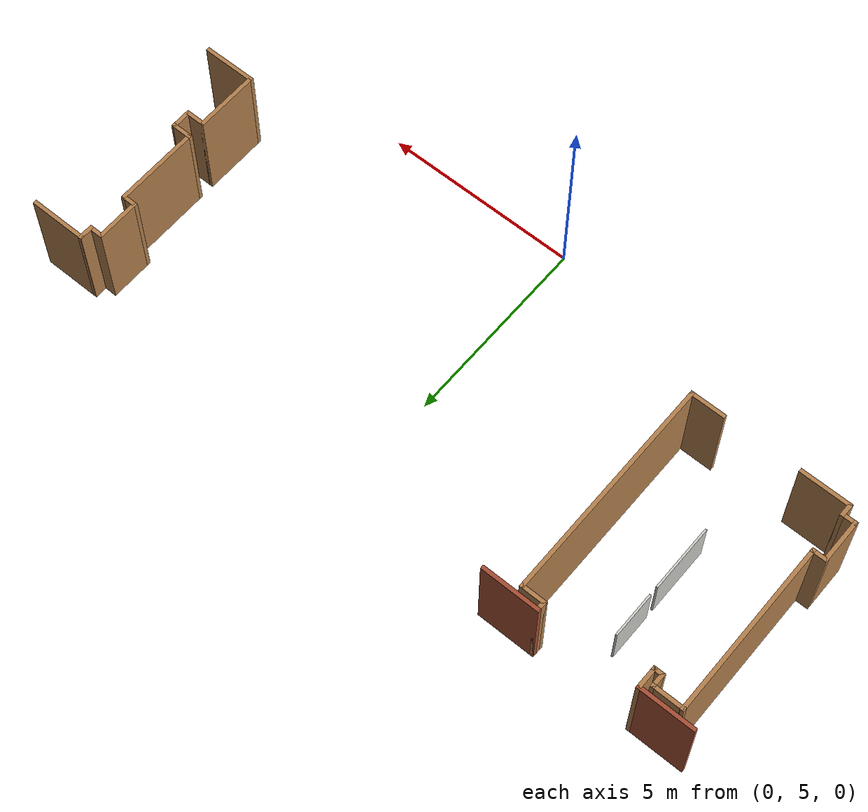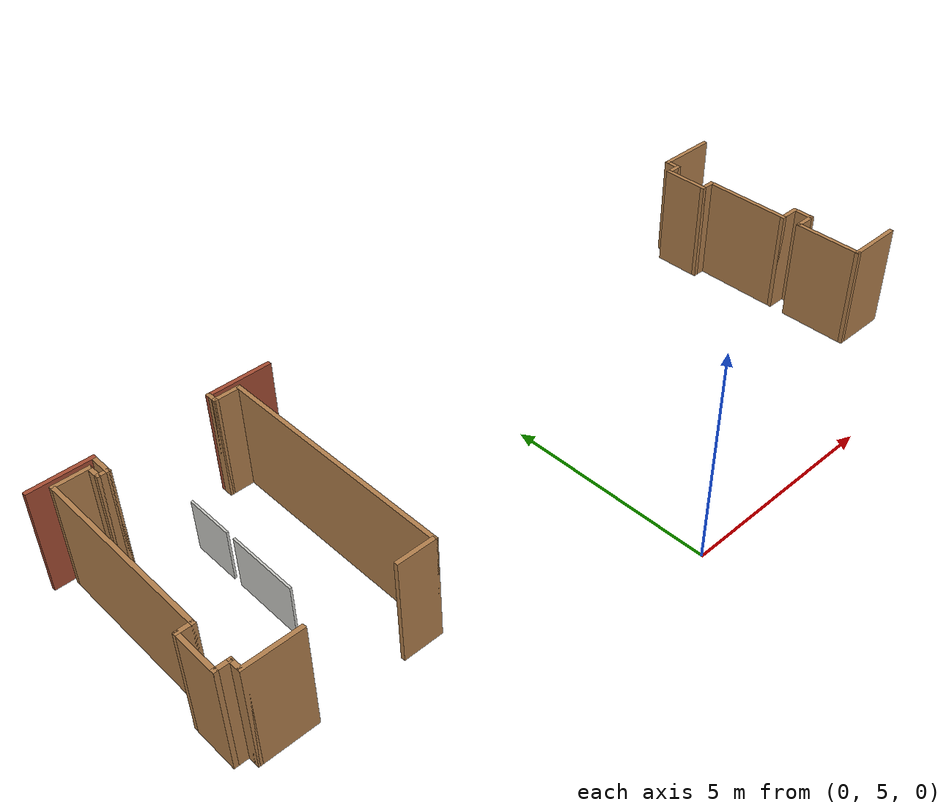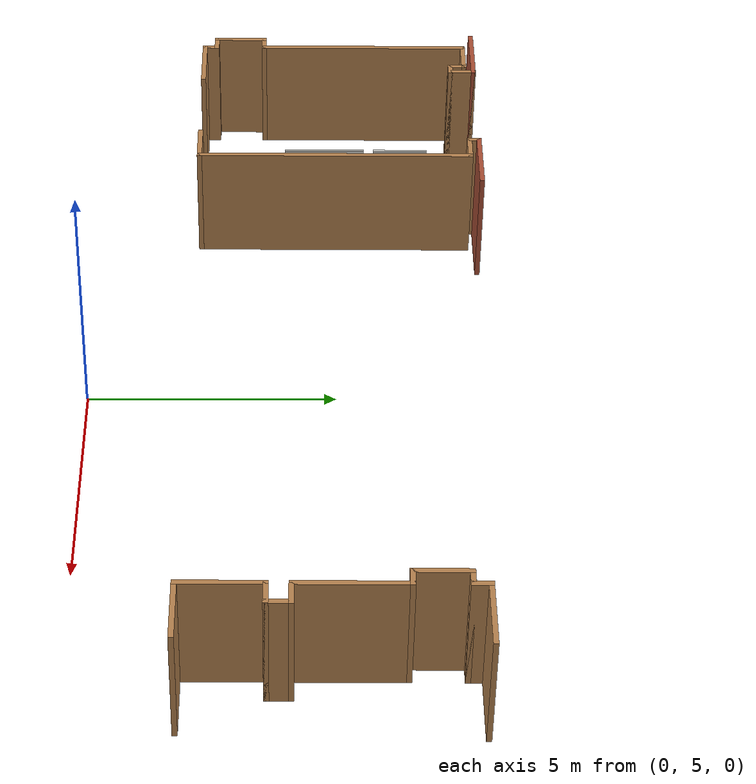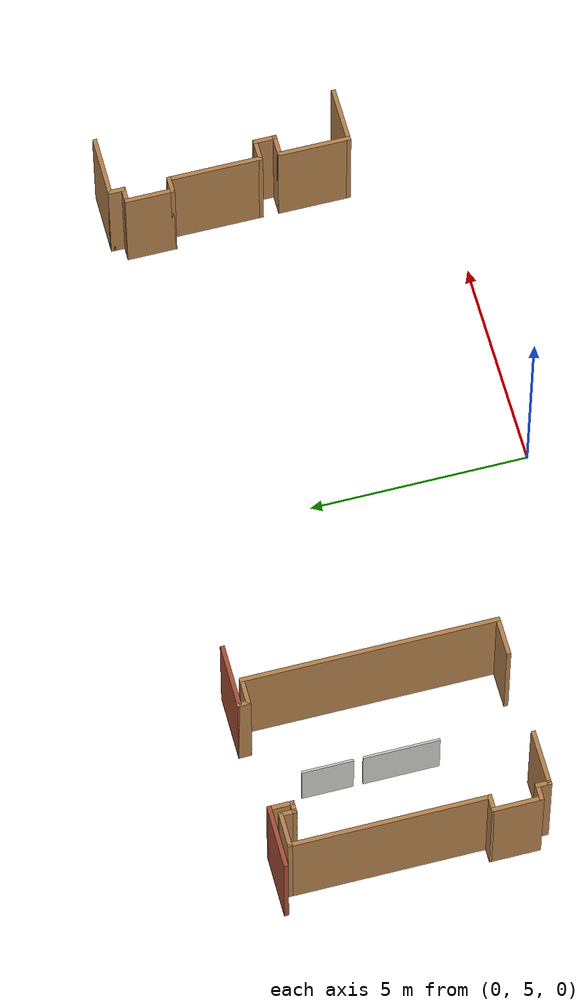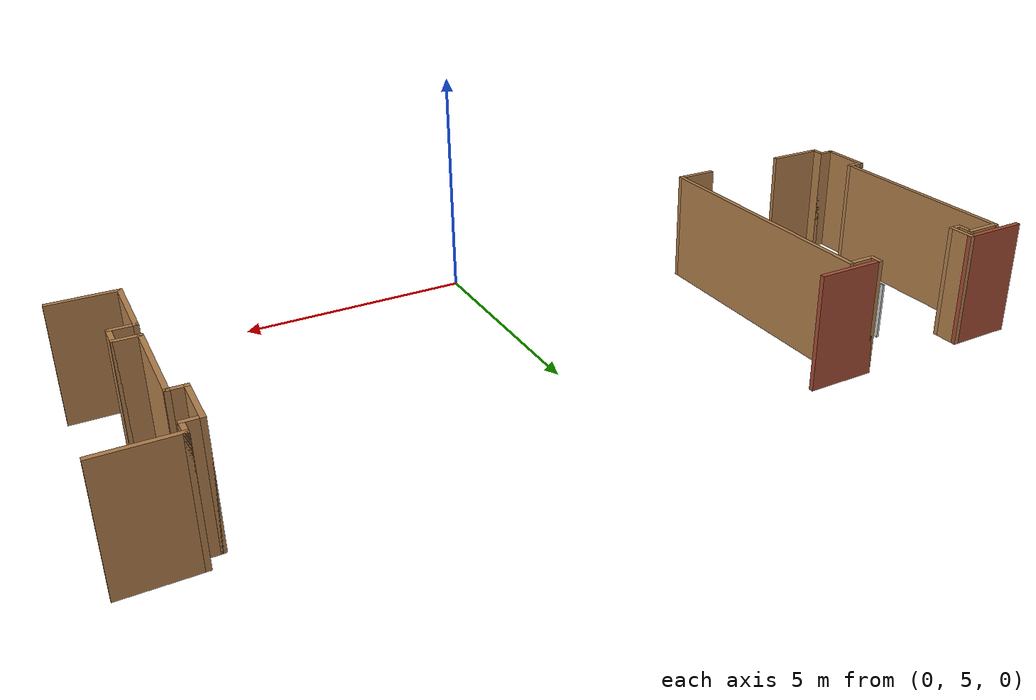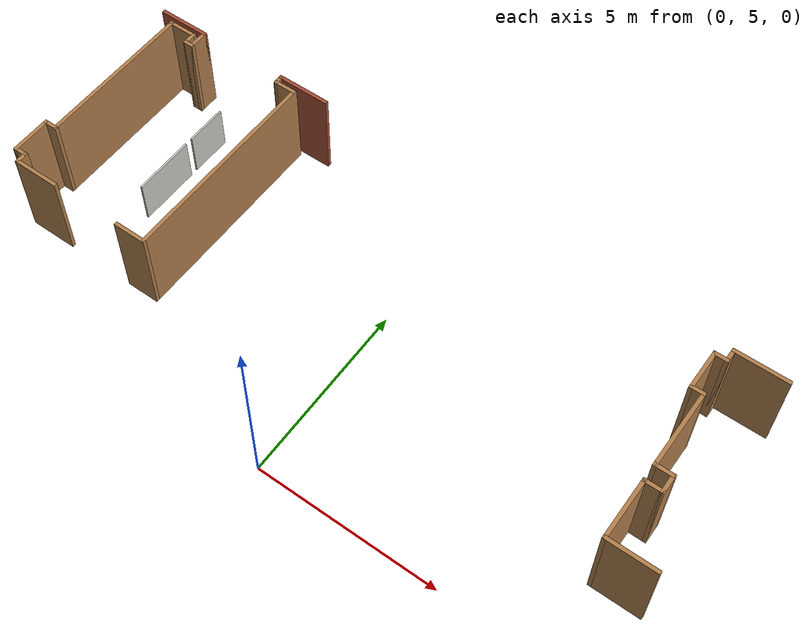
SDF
<sdf version="1.7">
 <model name="miraikan_3F_gate_and_elevator">
  <link name="Wall_100">
   <pose>5.2575 7.4925 0 0 -0 1.5708</pose>
   <visual name="Wall_100_Visual">
    <pose>0 0 1.25 0 -0 0</pose>
    <geometry><box><size>1.695 0.1 2.5</size></box></geometry>
    <material>
     <script><uri>file://media/materials/scripts/gazebo.material</uri><name>Gazebo/Wood</name></script>
     <ambient>1 1 1 1</ambient>
     <shader type="pixel"/>
    </material>
    <meta><layer>0</layer></meta>
   </visual>
   <collision name="Wall_100_Collision">
    <pose>0 0 1.25 0 -0 0</pose>
    <geometry><box><size>1.695 0.1 2.5</size></box></geometry>
    <surface>
     <friction>
      <ode><mu>1</mu><mu2>1</mu2><fdir1>0 0 0</fdir1><slip1>0</slip1><slip2>0</slip2></ode>
      <torsional>
       <coefficient>1</coefficient>
       <patch_radius>0</patch_radius>
       <surface_radius>0</surface_radius>
       <use_patch_radius>1</use_patch_radius>
       <ode><slip>0</slip></ode>
      </torsional>
     </friction>
     <bounce><restitution_coefficient>0</restitution_coefficient><threshold>1e+06</threshold></bounce>
     <contact>
      <collide_without_contact>0</collide_without_contact>
      <collide_without_contact_bitmask>1</collide_without_contact_bitmask>
      <collide_bitmask>1</collide_bitmask>
      <ode>
       <soft_cfm>0</soft_cfm>
       <soft_erp>0.2</soft_erp>
       <kp>1e+13</kp>
       <kd>1</kd>
       <max_vel>0.01</max_vel>
       <min_depth>0</min_depth>
      </ode>
      <bullet>
       <split_impulse>1</split_impulse>
       <split_impulse_penetration_threshold>-0.01</split_impulse_penetration_threshold>
       <soft_cfm>0</soft_cfm>
       <soft_erp>0.2</soft_erp>
       <kp>1e+13</kp>
       <kd>1</kd>
      </bullet>
     </contact>
    </surface>
   </collision>
  </link>
  <link name="Wall_102">
   <pose>5.4825 8.29 0 0 -0 0</pose>
   <visual name="Wall_102_Visual">
    <pose>0 0 1.25 0 -0 0</pose>
    <geometry><box><size>0.55 0.1 2.5</size></box></geometry>
    <material>
     <script><uri>file://media/materials/scripts/gazebo.material</uri><name>Gazebo/Wood</name></script>
     <ambient>1 1 1 1</ambient>
     <shader type="pixel"/>
    </material>
    <meta><layer>0</layer></meta>
   </visual>
   <collision name="Wall_102_Collision">
    <pose>0 0 1.25 0 -0 0</pose>
    <geometry><box><size>0.55 0.1 2.5</size></box></geometry>
    <surface>
     <friction>
      <ode><mu>1</mu><mu2>1</mu2><fdir1>0 0 0</fdir1><slip1>0</slip1><slip2>0</slip2></ode>
      <torsional>
       <coefficient>1</coefficient>
       <patch_radius>0</patch_radius>
       <surface_radius>0</surface_radius>
       <use_patch_radius>1</use_patch_radius>
       <ode><slip>0</slip></ode>
      </torsional>
     </friction>
     <bounce><restitution_coefficient>0</restitution_coefficient><threshold>1e+06</threshold></bounce>
     <contact>
      <collide_without_contact>0</collide_without_contact>
      <collide_without_contact_bitmask>1</collide_without_contact_bitmask>
      <collide_bitmask>1</collide_bitmask>
      <ode>
       <soft_cfm>0</soft_cfm>
       <soft_erp>0.2</soft_erp>
       <kp>1e+13</kp>
       <kd>1</kd>
       <max_vel>0.01</max_vel>
       <min_depth>0</min_depth>
      </ode>
      <bullet>
       <split_impulse>1</split_impulse>
       <split_impulse_penetration_threshold>-0.01</split_impulse_penetration_threshold>
       <soft_cfm>0</soft_cfm>
       <soft_erp>0.2</soft_erp>
       <kp>1e+13</kp>
       <kd>1</kd>
      </bullet>
     </contact>
    </surface>
   </collision>
  </link>
  <link name="Wall_104">
   <pose>5.7075 8.515 0 0 -0 1.5708</pose>
   <visual name="Wall_104_Visual">
    <pose>0 0 1.25 0 -0 0</pose>
    <geometry><box><size>0.55 0.1 2.5</size></box></geometry>
    <material>
     <script><uri>file://media/materials/scripts/gazebo.material</uri><name>Gazebo/Wood</name></script>
     <ambient>1 1 1 1</ambient>
     <shader type="pixel"/>
    </material>
    <meta><layer>0</layer></meta>
   </visual>
   <collision name="Wall_104_Collision">
    <pose>0 0 1.25 0 -0 0</pose>
    <geometry><box><size>0.55 0.1 2.5</size></box></geometry>
    <surface>
     <friction>
      <ode><mu>1</mu><mu2>1</mu2><fdir1>0 0 0</fdir1><slip1>0</slip1><slip2>0</slip2></ode>
      <torsional>
       <coefficient>1</coefficient>
       <patch_radius>0</patch_radius>
       <surface_radius>0</surface_radius>
       <use_patch_radius>1</use_patch_radius>
       <ode><slip>0</slip></ode>
      </torsional>
     </friction>
     <bounce><restitution_coefficient>0</restitution_coefficient><threshold>1e+06</threshold></bounce>
     <contact>
      <collide_without_contact>0</collide_without_contact>
      <collide_without_contact_bitmask>1</collide_without_contact_bitmask>
      <collide_bitmask>1</collide_bitmask>
      <ode>
       <soft_cfm>0</soft_cfm>
       <soft_erp>0.2</soft_erp>
       <kp>1e+13</kp>
       <kd>1</kd>
       <max_vel>0.01</max_vel>
       <min_depth>0</min_depth>
      </ode>
      <bullet>
       <split_impulse>1</split_impulse>
       <split_impulse_penetration_threshold>-0.01</split_impulse_penetration_threshold>
       <soft_cfm>0</soft_cfm>
       <soft_erp>0.2</soft_erp>
       <kp>1e+13</kp>
       <kd>1</kd>
      </bullet>
     </contact>
    </surface>
   </collision>
  </link>
  <link name="Wall_106">
   <pose>5.4825 8.74 0 0 -0 3.14159</pose>
   <visual name="Wall_106_Visual">
    <pose>0 0 1.25 0 -0 0</pose>
    <geometry><box><size>0.55 0.1 2.5</size></box></geometry>
    <material>
     <script><uri>file://media/materials/scripts/gazebo.material</uri><name>Gazebo/Wood</name></script>
     <ambient>1 1 1 1</ambient>
     <shader type="pixel"/>
    </material>
    <meta><layer>0</layer></meta>
   </visual>
   <collision name="Wall_106_Collision">
    <pose>0 0 1.25 0 -0 0</pose>
    <geometry><box><size>0.55 0.1 2.5</size></box></geometry>
    <surface>
     <friction>
      <ode><mu>1</mu><mu2>1</mu2><fdir1>0 0 0</fdir1><slip1>0</slip1><slip2>0</slip2></ode>
      <torsional>
       <coefficient>1</coefficient>
       <patch_radius>0</patch_radius>
       <surface_radius>0</surface_radius>
       <use_patch_radius>1</use_patch_radius>
       <ode><slip>0</slip></ode>
      </torsional>
     </friction>
     <bounce><restitution_coefficient>0</restitution_coefficient><threshold>1e+06</threshold></bounce>
     <contact>
      <collide_without_contact>0</collide_without_contact>
      <collide_without_contact_bitmask>1</collide_without_contact_bitmask>
      <collide_bitmask>1</collide_bitmask>
      <ode>
       <soft_cfm>0</soft_cfm>
       <soft_erp>0.2</soft_erp>
       <kp>1e+13</kp>
       <kd>1</kd>
       <max_vel>0.01</max_vel>
       <min_depth>0</min_depth>
      </ode>
      <bullet>
       <split_impulse>1</split_impulse>
       <split_impulse_penetration_threshold>-0.01</split_impulse_penetration_threshold>
       <soft_cfm>0</soft_cfm>
       <soft_erp>0.2</soft_erp>
       <kp>1e+13</kp>
       <kd>1</kd>
      </bullet>
     </contact>
    </surface>
   </collision>
  </link>
  <link name="Wall_108">
   <pose>5.2575 9.795 0 0 -0 1.5708</pose>
   <visual name="Wall_108_Visual">
    <pose>0 0 1.25 0 -0 0</pose>
    <geometry><box><size>2.21 0.1 2.5</size></box></geometry>
    <material>
     <script><uri>file://media/materials/scripts/gazebo.material</uri><name>Gazebo/Wood</name></script>
     <ambient>1 1 1 1</ambient>
     <shader type="pixel"/>
    </material>
    <meta><layer>0</layer></meta>
   </visual>
   <collision name="Wall_108_Collision">
    <pose>0 0 1.25 0 -0 0</pose>
    <geometry><box><size>2.21 0.1 2.5</size></box></geometry>
    <surface>
     <friction>
      <ode><mu>1</mu><mu2>1</mu2><fdir1>0 0 0</fdir1><slip1>0</slip1><slip2>0</slip2></ode>
      <torsional>
       <coefficient>1</coefficient>
       <patch_radius>0</patch_radius>
       <surface_radius>0</surface_radius>
       <use_patch_radius>1</use_patch_radius>
       <ode><slip>0</slip></ode>
      </torsional>
     </friction>
     <bounce><restitution_coefficient>0</restitution_coefficient><threshold>1e+06</threshold></bounce>
     <contact>
      <collide_without_contact>0</collide_without_contact>
      <collide_without_contact_bitmask>1</collide_without_contact_bitmask>
      <collide_bitmask>1</collide_bitmask>
      <ode>
       <soft_cfm>0</soft_cfm>
       <soft_erp>0.2</soft_erp>
       <kp>1e+13</kp>
       <kd>1</kd>
       <max_vel>0.01</max_vel>
       <min_depth>0</min_depth>
      </ode>
      <bullet>
       <split_impulse>1</split_impulse>
       <split_impulse_penetration_threshold>-0.01</split_impulse_penetration_threshold>
       <soft_cfm>0</soft_cfm>
       <soft_erp>0.2</soft_erp>
       <kp>1e+13</kp>
       <kd>1</kd>
      </bullet>
     </contact>
    </surface>
   </collision>
  </link>
  <link name="Wall_110">
   <pose>5.1025 10.85 0 0 -0 3.14159</pose>
   <visual name="Wall_110_Visual">
    <pose>0 0 1.25 0 -0 0</pose>
    <geometry><box><size>0.41 0.1 2.5</size></box></geometry>
    <material>
     <script><uri>file://media/materials/scripts/gazebo.material</uri><name>Gazebo/Wood</name></script>
     <ambient>1 1 1 1</ambient>
     <shader type="pixel"/>
    </material>
    <meta><layer>0</layer></meta>
   </visual>
   <collision name="Wall_110_Collision">
    <pose>0 0 1.25 0 -0 0</pose>
    <geometry><box><size>0.41 0.1 2.5</size></box></geometry>
    <surface>
     <friction>
      <ode><mu>1</mu><mu2>1</mu2><fdir1>0 0 0</fdir1><slip1>0</slip1><slip2>0</slip2></ode>
      <torsional>
       <coefficient>1</coefficient>
       <patch_radius>0</patch_radius>
       <surface_radius>0</surface_radius>
       <use_patch_radius>1</use_patch_radius>
       <ode><slip>0</slip></ode>
      </torsional>
     </friction>
     <bounce><restitution_coefficient>0</restitution_coefficient><threshold>1e+06</threshold></bounce>
     <contact>
      <collide_without_contact>0</collide_without_contact>
      <collide_without_contact_bitmask>1</collide_without_contact_bitmask>
      <collide_bitmask>1</collide_bitmask>
      <ode>
       <soft_cfm>0</soft_cfm>
       <soft_erp>0.2</soft_erp>
       <kp>1e+13</kp>
       <kd>1</kd>
       <max_vel>0.01</max_vel>
       <min_depth>0</min_depth>
      </ode>
      <bullet>
       <split_impulse>1</split_impulse>
       <split_impulse_penetration_threshold>-0.01</split_impulse_penetration_threshold>
       <soft_cfm>0</soft_cfm>
       <soft_erp>0.2</soft_erp>
       <kp>1e+13</kp>
       <kd>1</kd>
      </bullet>
     </contact>
    </surface>
   </collision>
  </link>
  <link name="Wall_112">
   <pose>4.9475 11.375 0 0 -0 1.5708</pose>
   <visual name="Wall_112_Visual">
    <pose>0 0 1.25 0 -0 0</pose>
    <geometry><box><size>1.15 0.1 2.5</size></box></geometry>
    <material>
     <script><uri>file://media/materials/scripts/gazebo.material</uri><name>Gazebo/Wood</name></script>
     <ambient>1 1 1 1</ambient>
     <shader type="pixel"/>
    </material>
    <meta><layer>0</layer></meta>
   </visual>
   <collision name="Wall_112_Collision">
    <pose>0 0 1.25 0 -0 0</pose>
    <geometry><box><size>1.15 0.1 2.5</size></box></geometry>
    <surface>
     <friction>
      <ode><mu>1</mu><mu2>1</mu2><fdir1>0 0 0</fdir1><slip1>0</slip1><slip2>0</slip2></ode>
      <torsional>
       <coefficient>1</coefficient>
       <patch_radius>0</patch_radius>
       <surface_radius>0</surface_radius>
       <use_patch_radius>1</use_patch_radius>
       <ode><slip>0</slip></ode>
      </torsional>
     </friction>
     <bounce><restitution_coefficient>0</restitution_coefficient><threshold>1e+06</threshold></bounce>
     <contact>
      <collide_without_contact>0</collide_without_contact>
      <collide_without_contact_bitmask>1</collide_without_contact_bitmask>
      <collide_bitmask>1</collide_bitmask>
      <ode>
       <soft_cfm>0</soft_cfm>
       <soft_erp>0.2</soft_erp>
       <kp>1e+13</kp>
       <kd>1</kd>
       <max_vel>0.01</max_vel>
       <min_depth>0</min_depth>
      </ode>
      <bullet>
       <split_impulse>1</split_impulse>
       <split_impulse_penetration_threshold>-0.01</split_impulse_penetration_threshold>
       <soft_cfm>0</soft_cfm>
       <soft_erp>0.2</soft_erp>
       <kp>1e+13</kp>
       <kd>1</kd>
      </bullet>
     </contact>
    </surface>
   </collision>
  </link>
  <link name="Wall_114">
   <pose>5.1025 11.9 0 0 -0 0</pose>
   <visual name="Wall_114_Visual">
    <pose>0 0 1.25 0 -0 0</pose>
    <geometry><box><size>0.41 0.1 2.5</size></box></geometry>
    <material>
     <script><uri>file://media/materials/scripts/gazebo.material</uri><name>Gazebo/Wood</name></script>
     <ambient>1 1 1 1</ambient>
     <shader type="pixel"/>
    </material>
    <meta><layer>0</layer></meta>
   </visual>
   <collision name="Wall_114_Collision">
    <pose>0 0 1.25 0 -0 0</pose>
    <geometry><box><size>0.41 0.1 2.5</size></box></geometry>
    <surface>
     <friction>
      <ode><mu>1</mu><mu2>1</mu2><fdir1>0 0 0</fdir1><slip1>0</slip1><slip2>0</slip2></ode>
      <torsional>
       <coefficient>1</coefficient>
       <patch_radius>0</patch_radius>
       <surface_radius>0</surface_radius>
       <use_patch_radius>1</use_patch_radius>
       <ode><slip>0</slip></ode>
      </torsional>
     </friction>
     <bounce><restitution_coefficient>0</restitution_coefficient><threshold>1e+06</threshold></bounce>
     <contact>
      <collide_without_contact>0</collide_without_contact>
      <collide_without_contact_bitmask>1</collide_without_contact_bitmask>
      <collide_bitmask>1</collide_bitmask>
      <ode>
       <soft_cfm>0</soft_cfm>
       <soft_erp>0.2</soft_erp>
       <kp>1e+13</kp>
       <kd>1</kd>
       <max_vel>0.01</max_vel>
       <min_depth>0</min_depth>
      </ode>
      <bullet>
       <split_impulse>1</split_impulse>
       <split_impulse_penetration_threshold>-0.01</split_impulse_penetration_threshold>
       <soft_cfm>0</soft_cfm>
       <soft_erp>0.2</soft_erp>
       <kp>1e+13</kp>
       <kd>1</kd>
      </bullet>
     </contact>
    </surface>
   </collision>
  </link>
  <link name="Wall_145">
   <pose>5.2575 12.055 0 0 -0 1.5708</pose>
   <visual name="Wall_145_Visual">
    <pose>0 0 1.25 0 -0 0</pose>
    <geometry><box><size>0.41 0.1 2.5</size></box></geometry>
    <material>
     <script><uri>file://media/materials/scripts/gazebo.material</uri><name>Gazebo/Wood</name></script>
     <ambient>1 1 1 1</ambient>
     <shader type="pixel"/>
    </material>
    <meta><layer>0</layer></meta>
   </visual>
   <collision name="Wall_145_Collision">
    <pose>0 0 1.25 0 -0 0</pose>
    <geometry><box><size>0.41 0.1 2.5</size></box></geometry>
    <surface>
     <friction>
      <ode><mu>1</mu><mu2>1</mu2><fdir1>0 0 0</fdir1><slip1>0</slip1><slip2>0</slip2></ode>
      <torsional>
       <coefficient>1</coefficient>
       <patch_radius>0</patch_radius>
       <surface_radius>0</surface_radius>
       <use_patch_radius>1</use_patch_radius>
       <ode><slip>0</slip></ode>
      </torsional>
     </friction>
     <bounce><restitution_coefficient>0</restitution_coefficient><threshold>1e+06</threshold></bounce>
     <contact>
      <collide_without_contact>0</collide_without_contact>
      <collide_without_contact_bitmask>1</collide_without_contact_bitmask>
      <collide_bitmask>1</collide_bitmask>
      <ode>
       <soft_cfm>0</soft_cfm>
       <soft_erp>0.2</soft_erp>
       <kp>1e+13</kp>
       <kd>1</kd>
       <max_vel>0.01</max_vel>
       <min_depth>0</min_depth>
      </ode>
      <bullet>
       <split_impulse>1</split_impulse>
       <split_impulse_penetration_threshold>-0.01</split_impulse_penetration_threshold>
       <soft_cfm>0</soft_cfm>
       <soft_erp>0.2</soft_erp>
       <kp>1e+13</kp>
       <kd>1</kd>
      </bullet>
     </contact>
    </surface>
   </collision>
  </link>
  <link name="Wall_148">
   <pose>5.9475 12.21 0 0 -0 0</pose>
   <visual name="Wall_148_Visual">
    <pose>0 0 1.25 0 -0 0</pose>
    <geometry><box><size>1.48 0.1 2.5</size></box></geometry>
    <material>
     <script><uri>file://media/materials/scripts/gazebo.material</uri><name>Gazebo/Wood</name></script>
     <ambient>1 1 1 1</ambient>
     <shader type="pixel"/>
    </material>
    <meta><layer>0</layer></meta>
   </visual>
   <collision name="Wall_148_Collision">
    <pose>0 0 1.25 0 -0 0</pose>
    <geometry><box><size>1.48 0.1 2.5</size></box></geometry>
    <surface>
     <friction>
      <ode><mu>1</mu><mu2>1</mu2><fdir1>0 0 0</fdir1><slip1>0</slip1><slip2>0</slip2></ode>
      <torsional>
       <coefficient>1</coefficient>
       <patch_radius>0</patch_radius>
       <surface_radius>0</surface_radius>
       <use_patch_radius>1</use_patch_radius>
       <ode><slip>0</slip></ode>
      </torsional>
     </friction>
     <bounce><restitution_coefficient>0</restitution_coefficient><threshold>1e+06</threshold></bounce>
     <contact>
      <collide_without_contact>0</collide_without_contact>
      <collide_without_contact_bitmask>1</collide_without_contact_bitmask>
      <collide_bitmask>1</collide_bitmask>
      <ode>
       <soft_cfm>0</soft_cfm>
       <soft_erp>0.2</soft_erp>
       <kp>1e+13</kp>
       <kd>1</kd>
       <max_vel>0.01</max_vel>
       <min_depth>0</min_depth>
      </ode>
      <bullet>
       <split_impulse>1</split_impulse>
       <split_impulse_penetration_threshold>-0.01</split_impulse_penetration_threshold>
       <soft_cfm>0</soft_cfm>
       <soft_erp>0.2</soft_erp>
       <kp>1e+13</kp>
       <kd>1</kd>
      </bullet>
     </contact>
    </surface>
   </collision>
  </link>
  <link name="Wall_17">
   <pose>-10.985 12.43 0 0 -0 3.14159</pose>
   <visual name="Wall_17_Visual">
    <pose>0 0 1.25 0 -0 0</pose>
    <geometry><box><size>0.835 0.1 2.5</size></box></geometry>
    <material>
     <script><uri>file://media/materials/scripts/gazebo.material</uri><name>Gazebo/Wood</name></script>
     <ambient>1 1 1 1</ambient>
     <shader type="pixel"/>
    </material>
    <meta><layer>0</layer></meta>
   </visual>
   <collision name="Wall_17_Collision">
    <pose>0 0 1.25 0 -0 0</pose>
    <geometry><box><size>0.835 0.1 2.5</size></box></geometry>
    <surface>
     <friction>
      <ode><mu>1</mu><mu2>1</mu2><fdir1>0 0 0</fdir1><slip1>0</slip1><slip2>0</slip2></ode>
      <torsional>
       <coefficient>1</coefficient>
       <patch_radius>0</patch_radius>
       <surface_radius>0</surface_radius>
       <use_patch_radius>1</use_patch_radius>
       <ode><slip>0</slip></ode>
      </torsional>
     </friction>
     <bounce><restitution_coefficient>0</restitution_coefficient><threshold>1e+06</threshold></bounce>
     <contact>
      <collide_without_contact>0</collide_without_contact>
      <collide_without_contact_bitmask>1</collide_without_contact_bitmask>
      <collide_bitmask>1</collide_bitmask>
      <ode>
       <soft_cfm>0</soft_cfm>
       <soft_erp>0.2</soft_erp>
       <kp>1e+13</kp>
       <kd>1</kd>
       <max_vel>0.01</max_vel>
       <min_depth>0</min_depth>
      </ode>
      <bullet>
       <split_impulse>1</split_impulse>
       <split_impulse_penetration_threshold>-0.01</split_impulse_penetration_threshold>
       <soft_cfm>0</soft_cfm>
       <soft_erp>0.2</soft_erp>
       <kp>1e+13</kp>
       <kd>1</kd>
      </bullet>
     </contact>
    </surface>
   </collision>
  </link>
  <link name="Wall_20">
   <pose>-11.3525 10.235 0 0 0 -1.5708</pose>
   <visual name="Wall_20_Visual">
    <pose>0 0 1.25 0 -0 0</pose>
    <geometry><box><size>4.49 0.1 2.5</size></box></geometry>
    <material>
     <script><uri>file://media/materials/scripts/gazebo.material</uri><name>Gazebo/Wood</name></script>
     <ambient>1 1 1 1</ambient>
     <shader type="pixel"/>
    </material>
    <meta><layer>0</layer></meta>
   </visual>
   <collision name="Wall_20_Collision">
    <pose>0 0 1.25 0 -0 0</pose>
    <geometry><box><size>4.49 0.1 2.5</size></box></geometry>
    <surface>
     <friction>
      <ode><mu>1</mu><mu2>1</mu2><fdir1>0 0 0</fdir1><slip1>0</slip1><slip2>0</slip2></ode>
      <torsional>
       <coefficient>1</coefficient>
       <patch_radius>0</patch_radius>
       <surface_radius>0</surface_radius>
       <use_patch_radius>1</use_patch_radius>
       <ode><slip>0</slip></ode>
      </torsional>
     </friction>
     <bounce><restitution_coefficient>0</restitution_coefficient><threshold>1e+06</threshold></bounce>
     <contact>
      <collide_without_contact>0</collide_without_contact>
      <collide_without_contact_bitmask>1</collide_without_contact_bitmask>
      <collide_bitmask>1</collide_bitmask>
      <ode>
       <soft_cfm>0</soft_cfm>
       <soft_erp>0.2</soft_erp>
       <kp>1e+13</kp>
       <kd>1</kd>
       <max_vel>0.01</max_vel>
       <min_depth>0</min_depth>
      </ode>
      <bullet>
       <split_impulse>1</split_impulse>
       <split_impulse_penetration_threshold>-0.01</split_impulse_penetration_threshold>
       <soft_cfm>0</soft_cfm>
       <soft_erp>0.2</soft_erp>
       <kp>1e+13</kp>
       <kd>1</kd>
      </bullet>
     </contact>
    </surface>
   </collision>
  </link>
  <link name="Wall_22">
   <pose>-11.5075 8.04 0 0 -0 3.14159</pose>
   <visual name="Wall_22_Visual">
    <pose>0 0 1.25 0 -0 0</pose>
    <geometry><box><size>0.41 0.1 2.5</size></box></geometry>
    <material>
     <script><uri>file://media/materials/scripts/gazebo.material</uri><name>Gazebo/Wood</name></script>
     <ambient>1 1 1 1</ambient>
     <shader type="pixel"/>
    </material>
    <meta><layer>0</layer></meta>
   </visual>
   <collision name="Wall_22_Collision">
    <pose>0 0 1.25 0 -0 0</pose>
    <geometry><box><size>0.41 0.1 2.5</size></box></geometry>
    <surface>
     <friction>
      <ode><mu>1</mu><mu2>1</mu2><fdir1>0 0 0</fdir1><slip1>0</slip1><slip2>0</slip2></ode>
      <torsional>
       <coefficient>1</coefficient>
       <patch_radius>0</patch_radius>
       <surface_radius>0</surface_radius>
       <use_patch_radius>1</use_patch_radius>
       <ode><slip>0</slip></ode>
      </torsional>
     </friction>
     <bounce><restitution_coefficient>0</restitution_coefficient><threshold>1e+06</threshold></bounce>
     <contact>
      <collide_without_contact>0</collide_without_contact>
      <collide_without_contact_bitmask>1</collide_without_contact_bitmask>
      <collide_bitmask>1</collide_bitmask>
      <ode>
       <soft_cfm>0</soft_cfm>
       <soft_erp>0.2</soft_erp>
       <kp>1e+13</kp>
       <kd>1</kd>
       <max_vel>0.01</max_vel>
       <min_depth>0</min_depth>
      </ode>
      <bullet>
       <split_impulse>1</split_impulse>
       <split_impulse_penetration_threshold>-0.01</split_impulse_penetration_threshold>
       <soft_cfm>0</soft_cfm>
       <soft_erp>0.2</soft_erp>
       <kp>1e+13</kp>
       <kd>1</kd>
      </bullet>
     </contact>
    </surface>
   </collision>
  </link>
  <link name="Wall_24">
   <pose>-11.6625 7.515 0 0 0 -1.5708</pose>
   <visual name="Wall_24_Visual">
    <pose>0 0 1.25 0 -0 0</pose>
    <geometry><box><size>1.15 0.1 2.5</size></box></geometry>
    <material>
     <script><uri>file://media/materials/scripts/gazebo.material</uri><name>Gazebo/Wood</name></script>
     <ambient>1 1 1 1</ambient>
     <shader type="pixel"/>
    </material>
    <meta><layer>0</layer></meta>
   </visual>
   <collision name="Wall_24_Collision">
    <pose>0 0 1.25 0 -0 0</pose>
    <geometry><box><size>1.15 0.1 2.5</size></box></geometry>
    <surface>
     <friction>
      <ode><mu>1</mu><mu2>1</mu2><fdir1>0 0 0</fdir1><slip1>0</slip1><slip2>0</slip2></ode>
      <torsional>
       <coefficient>1</coefficient>
       <patch_radius>0</patch_radius>
       <surface_radius>0</surface_radius>
       <use_patch_radius>1</use_patch_radius>
       <ode><slip>0</slip></ode>
      </torsional>
     </friction>
     <bounce><restitution_coefficient>0</restitution_coefficient><threshold>1e+06</threshold></bounce>
     <contact>
      <collide_without_contact>0</collide_without_contact>
      <collide_without_contact_bitmask>1</collide_without_contact_bitmask>
      <collide_bitmask>1</collide_bitmask>
      <ode>
       <soft_cfm>0</soft_cfm>
       <soft_erp>0.2</soft_erp>
       <kp>1e+13</kp>
       <kd>1</kd>
       <max_vel>0.01</max_vel>
       <min_depth>0</min_depth>
      </ode>
      <bullet>
       <split_impulse>1</split_impulse>
       <split_impulse_penetration_threshold>-0.01</split_impulse_penetration_threshold>
       <soft_cfm>0</soft_cfm>
       <soft_erp>0.2</soft_erp>
       <kp>1e+13</kp>
       <kd>1</kd>
      </bullet>
     </contact>
    </surface>
   </collision>
  </link>
  <link name="Wall_26">
   <pose>-11.5075 6.99 0 0 -0 0</pose>
   <visual name="Wall_26_Visual">
    <pose>0 0 1.25 0 -0 0</pose>
    <geometry><box><size>0.41 0.1 2.5</size></box></geometry>
    <material>
     <script><uri>file://media/materials/scripts/gazebo.material</uri><name>Gazebo/Wood</name></script>
     <ambient>1 1 1 1</ambient>
     <shader type="pixel"/>
    </material>
    <meta><layer>0</layer></meta>
   </visual>
   <collision name="Wall_26_Collision">
    <pose>0 0 1.25 0 -0 0</pose>
    <geometry><box><size>0.41 0.1 2.5</size></box></geometry>
    <surface>
     <friction>
      <ode><mu>1</mu><mu2>1</mu2><fdir1>0 0 0</fdir1><slip1>0</slip1><slip2>0</slip2></ode>
      <torsional>
       <coefficient>1</coefficient>
       <patch_radius>0</patch_radius>
       <surface_radius>0</surface_radius>
       <use_patch_radius>1</use_patch_radius>
       <ode><slip>0</slip></ode>
      </torsional>
     </friction>
     <bounce><restitution_coefficient>0</restitution_coefficient><threshold>1e+06</threshold></bounce>
     <contact>
      <collide_without_contact>0</collide_without_contact>
      <collide_without_contact_bitmask>1</collide_without_contact_bitmask>
      <collide_bitmask>1</collide_bitmask>
      <ode>
       <soft_cfm>0</soft_cfm>
       <soft_erp>0.2</soft_erp>
       <kp>1e+13</kp>
       <kd>1</kd>
       <max_vel>0.01</max_vel>
       <min_depth>0</min_depth>
      </ode>
      <bullet>
       <split_impulse>1</split_impulse>
       <split_impulse_penetration_threshold>-0.01</split_impulse_penetration_threshold>
       <soft_cfm>0</soft_cfm>
       <soft_erp>0.2</soft_erp>
       <kp>1e+13</kp>
       <kd>1</kd>
      </bullet>
     </contact>
    </surface>
   </collision>
  </link>
  <link name="Wall_28">
   <pose>-11.3525 6.86 0 0 0 -1.5708</pose>
   <visual name="Wall_28_Visual">
    <pose>0 0 1.25 0 -0 0</pose>
    <geometry><box><size>0.36 0.1 2.5</size></box></geometry>
    <material>
     <script><uri>file://media/materials/scripts/gazebo.material</uri><name>Gazebo/Wood</name></script>
     <ambient>1 1 1 1</ambient>
     <shader type="pixel"/>
    </material>
    <meta><layer>0</layer></meta>
   </visual>
   <collision name="Wall_28_Collision">
    <pose>0 0 1.25 0 -0 0</pose>
    <geometry><box><size>0.36 0.1 2.5</size></box></geometry>
    <surface>
     <friction>
      <ode><mu>1</mu><mu2>1</mu2><fdir1>0 0 0</fdir1><slip1>0</slip1><slip2>0</slip2></ode>
      <torsional>
       <coefficient>1</coefficient>
       <patch_radius>0</patch_radius>
       <surface_radius>0</surface_radius>
       <use_patch_radius>1</use_patch_radius>
       <ode><slip>0</slip></ode>
      </torsional>
     </friction>
     <bounce><restitution_coefficient>0</restitution_coefficient><threshold>1e+06</threshold></bounce>
     <contact>
      <collide_without_contact>0</collide_without_contact>
      <collide_without_contact_bitmask>1</collide_without_contact_bitmask>
      <collide_bitmask>1</collide_bitmask>
      <ode>
       <soft_cfm>0</soft_cfm>
       <soft_erp>0.2</soft_erp>
       <kp>1e+13</kp>
       <kd>1</kd>
       <max_vel>0.01</max_vel>
       <min_depth>0</min_depth>
      </ode>
      <bullet>
       <split_impulse>1</split_impulse>
       <split_impulse_penetration_threshold>-0.01</split_impulse_penetration_threshold>
       <soft_cfm>0</soft_cfm>
       <soft_erp>0.2</soft_erp>
       <kp>1e+13</kp>
       <kd>1</kd>
      </bullet>
     </contact>
    </surface>
   </collision>
  </link>
  <link name="Wall_284">
   <pose>5.8925 6.695 0 0 -0 3.14159</pose>
   <visual name="Wall_284_Visual">
    <pose>0 0 1.25 0 -0 0</pose>
    <geometry><box><size>1.37 0.1 2.5</size></box></geometry>
    <material>
     <script><uri>file://media/materials/scripts/gazebo.material</uri><name>Gazebo/Wood</name></script>
     <ambient>1 1 1 1</ambient>
     <shader type="pixel"/>
    </material>
    <meta><layer>0</layer></meta>
   </visual>
   <collision name="Wall_284_Collision">
    <pose>0 0 1.25 0 -0 0</pose>
    <geometry><box><size>1.37 0.1 2.5</size></box></geometry>
    <surface>
     <friction>
      <ode><mu>1</mu><mu2>1</mu2><fdir1>0 0 0</fdir1><slip1>0</slip1><slip2>0</slip2></ode>
      <torsional>
       <coefficient>1</coefficient>
       <patch_radius>0</patch_radius>
       <surface_radius>0</surface_radius>
       <use_patch_radius>1</use_patch_radius>
       <ode><slip>0</slip></ode>
      </torsional>
     </friction>
     <bounce><restitution_coefficient>0</restitution_coefficient><threshold>1e+06</threshold></bounce>
     <contact>
      <collide_without_contact>0</collide_without_contact>
      <collide_without_contact_bitmask>1</collide_without_contact_bitmask>
      <collide_bitmask>1</collide_bitmask>
      <ode>
       <soft_cfm>0</soft_cfm>
       <soft_erp>0.2</soft_erp>
       <kp>1e+13</kp>
       <kd>1</kd>
       <max_vel>0.01</max_vel>
       <min_depth>0</min_depth>
      </ode>
      <bullet>
       <split_impulse>1</split_impulse>
       <split_impulse_penetration_threshold>-0.01</split_impulse_penetration_threshold>
       <soft_cfm>0</soft_cfm>
       <soft_erp>0.2</soft_erp>
       <kp>1e+13</kp>
       <kd>1</kd>
      </bullet>
     </contact>
    </surface>
   </collision>
  </link>
  <link name="Wall_295">
   <pose>-7.3125 9.58 0 0 0 -1.5708</pose>
   <visual name="Wall_295_Visual">
    <pose>0 0 1.25 0 -0 0</pose>
    <geometry><box><size>5.8 0.1 2.5</size></box></geometry>
    <material>
     <script><uri>file://media/materials/scripts/gazebo.material</uri><name>Gazebo/Wood</name></script>
     <ambient>1 1 1 1</ambient>
     <shader type="pixel"/>
    </material>
    <meta><layer>0</layer></meta>
   </visual>
   <collision name="Wall_295_Collision">
    <pose>0 0 1.25 0 -0 0</pose>
    <geometry><box><size>5.8 0.1 2.5</size></box></geometry>
    <surface>
     <friction>
      <ode><mu>1</mu><mu2>1</mu2><fdir1>0 0 0</fdir1><slip1>0</slip1><slip2>0</slip2></ode>
      <torsional>
       <coefficient>1</coefficient>
       <patch_radius>0</patch_radius>
       <surface_radius>0</surface_radius>
       <use_patch_radius>1</use_patch_radius>
       <ode><slip>0</slip></ode>
      </torsional>
     </friction>
     <bounce><restitution_coefficient>0</restitution_coefficient><threshold>1e+06</threshold></bounce>
     <contact>
      <collide_without_contact>0</collide_without_contact>
      <collide_without_contact_bitmask>1</collide_without_contact_bitmask>
      <collide_bitmask>1</collide_bitmask>
      <ode>
       <soft_cfm>0</soft_cfm>
       <soft_erp>0.2</soft_erp>
       <kp>1e+13</kp>
       <kd>1</kd>
       <max_vel>0.01</max_vel>
       <min_depth>0</min_depth>
      </ode>
      <bullet>
       <split_impulse>1</split_impulse>
       <split_impulse_penetration_threshold>-0.01</split_impulse_penetration_threshold>
       <soft_cfm>0</soft_cfm>
       <soft_erp>0.2</soft_erp>
       <kp>1e+13</kp>
       <kd>1</kd>
      </bullet>
     </contact>
    </surface>
   </collision>
  </link>
  <link name="Wall_297">
   <pose>-7.7225 6.73 0 0 -0 3.14159</pose>
   <visual name="Wall_297_Visual">
    <pose>0 0 1.25 0 -0 0</pose>
    <geometry><box><size>0.92 0.1 2.5</size></box></geometry>
    <material>
     <script><uri>file://media/materials/scripts/gazebo.material</uri><name>Gazebo/Wood</name></script>
     <ambient>1 1 1 1</ambient>
     <shader type="pixel"/>
    </material>
    <meta><layer>0</layer></meta>
   </visual>
   <collision name="Wall_297_Collision">
    <pose>0 0 1.25 0 -0 0</pose>
    <geometry><box><size>0.92 0.1 2.5</size></box></geometry>
    <surface>
     <friction>
      <ode><mu>1</mu><mu2>1</mu2><fdir1>0 0 0</fdir1><slip1>0</slip1><slip2>0</slip2></ode>
      <torsional>
       <coefficient>1</coefficient>
       <patch_radius>0</patch_radius>
       <surface_radius>0</surface_radius>
       <use_patch_radius>1</use_patch_radius>
       <ode><slip>0</slip></ode>
      </torsional>
     </friction>
     <bounce><restitution_coefficient>0</restitution_coefficient><threshold>1e+06</threshold></bounce>
     <contact>
      <collide_without_contact>0</collide_without_contact>
      <collide_without_contact_bitmask>1</collide_without_contact_bitmask>
      <collide_bitmask>1</collide_bitmask>
      <ode>
       <soft_cfm>0</soft_cfm>
       <soft_erp>0.2</soft_erp>
       <kp>1e+13</kp>
       <kd>1</kd>
       <max_vel>0.01</max_vel>
       <min_depth>0</min_depth>
      </ode>
      <bullet>
       <split_impulse>1</split_impulse>
       <split_impulse_penetration_threshold>-0.01</split_impulse_penetration_threshold>
       <soft_cfm>0</soft_cfm>
       <soft_erp>0.2</soft_erp>
       <kp>1e+13</kp>
       <kd>1</kd>
      </bullet>
     </contact>
    </surface>
   </collision>
  </link>
  <link name="Wall_306">
   <pose>-9.1825 11.025 0 0 0 -1.5708</pose>
   <visual name="Wall_306_Visual">
    <pose>0 0 0.625 0 -0 0</pose>
    <geometry><box><size>1.16 0.05 1.25</size></box></geometry>
    <material>
     <script><uri>file://media/materials/scripts/gazebo.material</uri><name>Gazebo/CeilingTiled</name></script>
     <ambient>1 1 1 1</ambient>
     <shader type="pixel"/>
    </material>
    <meta><layer>0</layer></meta>
   </visual>
   <collision name="Wall_306_Collision">
    <pose>0 0 0.625 0 -0 0</pose>
    <geometry><box><size>1.16 0.05 1.25</size></box></geometry>
    <surface>
     <friction>
      <ode><mu>1</mu><mu2>1</mu2><fdir1>0 0 0</fdir1><slip1>0</slip1><slip2>0</slip2></ode>
      <torsional>
       <coefficient>1</coefficient>
       <patch_radius>0</patch_radius>
       <surface_radius>0</surface_radius>
       <use_patch_radius>1</use_patch_radius>
       <ode><slip>0</slip></ode>
      </torsional>
     </friction>
     <bounce><restitution_coefficient>0</restitution_coefficient><threshold>1e+06</threshold></bounce>
     <contact>
      <collide_without_contact>0</collide_without_contact>
      <collide_without_contact_bitmask>1</collide_without_contact_bitmask>
      <collide_bitmask>1</collide_bitmask>
      <ode>
       <soft_cfm>0</soft_cfm>
       <soft_erp>0.2</soft_erp>
       <kp>1e+13</kp>
       <kd>1</kd>
       <max_vel>0.01</max_vel>
       <min_depth>0</min_depth>
      </ode>
      <bullet>
       <split_impulse>1</split_impulse>
       <split_impulse_penetration_threshold>-0.01</split_impulse_penetration_threshold>
       <soft_cfm>0</soft_cfm>
       <soft_erp>0.2</soft_erp>
       <kp>1e+13</kp>
       <kd>1</kd>
      </bullet>
     </contact>
    </surface>
   </collision>
  </link>
  <link name="Wall_308">
   <pose>-9.1825 9.375 0 0 -0 1.5708</pose>
   <visual name="Wall_308_Visual">
    <pose>0 0 0.625 0 -0 0</pose>
    <geometry><box><size>1.72 0.05 1.25</size></box></geometry>
    <material>
     <script><uri>file://media/materials/scripts/gazebo.material</uri><name>Gazebo/CeilingTiled</name></script>
     <ambient>1 1 1 1</ambient>
     <shader type="pixel"/>
    </material>
    <meta><layer>0</layer></meta>
   </visual>
   <collision name="Wall_308_Collision">
    <pose>0 0 0.625 0 -0 0</pose>
    <geometry><box><size>1.72 0.05 1.25</size></box></geometry>
    <surface>
     <friction>
      <ode><mu>1</mu><mu2>1</mu2><fdir1>0 0 0</fdir1><slip1>0</slip1><slip2>0</slip2></ode>
      <torsional>
       <coefficient>1</coefficient>
       <patch_radius>0</patch_radius>
       <surface_radius>0</surface_radius>
       <use_patch_radius>1</use_patch_radius>
       <ode><slip>0</slip></ode>
      </torsional>
     </friction>
     <bounce><restitution_coefficient>0</restitution_coefficient><threshold>1e+06</threshold></bounce>
     <contact>
      <collide_without_contact>0</collide_without_contact>
      <collide_without_contact_bitmask>1</collide_without_contact_bitmask>
      <collide_bitmask>1</collide_bitmask>
      <ode>
       <soft_cfm>0</soft_cfm>
       <soft_erp>0.2</soft_erp>
       <kp>1e+13</kp>
       <kd>1</kd>
       <max_vel>0.01</max_vel>
       <min_depth>0</min_depth>
      </ode>
      <bullet>
       <split_impulse>1</split_impulse>
       <split_impulse_penetration_threshold>-0.01</split_impulse_penetration_threshold>
       <soft_cfm>0</soft_cfm>
       <soft_erp>0.2</soft_erp>
       <kp>1e+13</kp>
       <kd>1</kd>
      </bullet>
     </contact>
    </surface>
   </collision>
  </link>
  <link name="Wall_314">
   <pose>-10.5175 12.13 0 0 -0 3.14159</pose>
   <visual name="Wall_314_Visual">
    <pose>0 0 1.25 0 -0 0</pose>
    <geometry><box><size>0.3 0.1 2.5</size></box></geometry>
    <material>
     <script><uri>file://media/materials/scripts/gazebo.material</uri><name>Gazebo/Wood</name></script>
     <ambient>1 1 1 1</ambient>
     <shader type="pixel"/>
    </material>
    <meta><layer>0</layer></meta>
   </visual>
   <collision name="Wall_314_Collision">
    <pose>0 0 1.25 0 -0 0</pose>
    <geometry><box><size>0.3 0.1 2.5</size></box></geometry>
    <surface>
     <friction>
      <ode><mu>1</mu><mu2>1</mu2><fdir1>0 0 0</fdir1><slip1>0</slip1><slip2>0</slip2></ode>
      <torsional>
       <coefficient>1</coefficient>
       <patch_radius>0</patch_radius>
       <surface_radius>0</surface_radius>
       <use_patch_radius>1</use_patch_radius>
       <ode><slip>0</slip></ode>
      </torsional>
     </friction>
     <bounce><restitution_coefficient>0</restitution_coefficient><threshold>1e+06</threshold></bounce>
     <contact>
      <collide_without_contact>0</collide_without_contact>
      <collide_without_contact_bitmask>1</collide_without_contact_bitmask>
      <collide_bitmask>1</collide_bitmask>
      <ode>
       <soft_cfm>0</soft_cfm>
       <soft_erp>0.2</soft_erp>
       <kp>1e+13</kp>
       <kd>1</kd>
       <max_vel>0.01</max_vel>
       <min_depth>0</min_depth>
      </ode>
      <bullet>
       <split_impulse>1</split_impulse>
       <split_impulse_penetration_threshold>-0.01</split_impulse_penetration_threshold>
       <soft_cfm>0</soft_cfm>
       <soft_erp>0.2</soft_erp>
       <kp>1e+13</kp>
       <kd>1</kd>
      </bullet>
     </contact>
    </surface>
   </collision>
  </link>
  <link name="Wall_317">
   <pose>-10.6175 12.28 0 0 -0 1.5708</pose>
   <visual name="Wall_317_Visual">
    <pose>0 0 1.25 0 -0 0</pose>
    <geometry><box><size>0.4 0.1 2.5</size></box></geometry>
    <material>
     <script><uri>file://media/materials/scripts/gazebo.material</uri><name>Gazebo/Wood</name></script>
     <ambient>1 1 1 1</ambient>
     <shader type="pixel"/>
    </material>
    <meta><layer>0</layer></meta>
   </visual>
   <collision name="Wall_317_Collision">
    <pose>0 0 1.25 0 -0 0</pose>
    <geometry><box><size>0.4 0.1 2.5</size></box></geometry>
    <surface>
     <friction>
      <ode><mu>1</mu><mu2>1</mu2><fdir1>0 0 0</fdir1><slip1>0</slip1><slip2>0</slip2></ode>
      <torsional>
       <coefficient>1</coefficient>
       <patch_radius>0</patch_radius>
       <surface_radius>0</surface_radius>
       <use_patch_radius>1</use_patch_radius>
       <ode><slip>0</slip></ode>
      </torsional>
     </friction>
     <bounce><restitution_coefficient>0</restitution_coefficient><threshold>1e+06</threshold></bounce>
     <contact>
      <collide_without_contact>0</collide_without_contact>
      <collide_without_contact_bitmask>1</collide_without_contact_bitmask>
      <collide_bitmask>1</collide_bitmask>
      <ode>
       <soft_cfm>0</soft_cfm>
       <soft_erp>0.2</soft_erp>
       <kp>1e+13</kp>
       <kd>1</kd>
       <max_vel>0.01</max_vel>
       <min_depth>0</min_depth>
      </ode>
      <bullet>
       <split_impulse>1</split_impulse>
       <split_impulse_penetration_threshold>-0.01</split_impulse_penetration_threshold>
       <soft_cfm>0</soft_cfm>
       <soft_erp>0.2</soft_erp>
       <kp>1e+13</kp>
       <kd>1</kd>
      </bullet>
     </contact>
    </surface>
   </collision>
  </link>
  <link name="Wall_34">
   <pose>-10.7475 6.73 0 0 -0 0</pose>
   <visual name="Wall_34_Visual">
    <pose>0 0 1.25 0 -0 0</pose>
    <geometry><box><size>1.31 0.1 2.5</size></box></geometry>
    <material>
     <script><uri>file://media/materials/scripts/gazebo.material</uri><name>Gazebo/Wood</name></script>
     <ambient>1 1 1 1</ambient>
     <shader type="pixel"/>
    </material>
    <meta><layer>0</layer></meta>
   </visual>
   <collision name="Wall_34_Collision">
    <pose>0 0 1.25 0 -0 0</pose>
    <geometry><box><size>1.31 0.1 2.5</size></box></geometry>
    <surface>
     <friction>
      <ode><mu>1</mu><mu2>1</mu2><fdir1>0 0 0</fdir1><slip1>0</slip1><slip2>0</slip2></ode>
      <torsional>
       <coefficient>1</coefficient>
       <patch_radius>0</patch_radius>
       <surface_radius>0</surface_radius>
       <use_patch_radius>1</use_patch_radius>
       <ode><slip>0</slip></ode>
      </torsional>
     </friction>
     <bounce><restitution_coefficient>0</restitution_coefficient><threshold>1e+06</threshold></bounce>
     <contact>
      <collide_without_contact>0</collide_without_contact>
      <collide_without_contact_bitmask>1</collide_without_contact_bitmask>
      <collide_bitmask>1</collide_bitmask>
      <ode>
       <soft_cfm>0</soft_cfm>
       <soft_erp>0.2</soft_erp>
       <kp>1e+13</kp>
       <kd>1</kd>
       <max_vel>0.01</max_vel>
       <min_depth>0</min_depth>
      </ode>
      <bullet>
       <split_impulse>1</split_impulse>
       <split_impulse_penetration_threshold>-0.01</split_impulse_penetration_threshold>
       <soft_cfm>0</soft_cfm>
       <soft_erp>0.2</soft_erp>
       <kp>1e+13</kp>
       <kd>1</kd>
      </bullet>
     </contact>
    </surface>
   </collision>
  </link>
  <link name="Wall_473">
   <pose>-11.0925 12.63 0 0 -0 3.14159</pose>
   <visual name="Wall_473_Visual">
    <pose>0 0 1.25 0 -0 0</pose>
    <geometry><box><size>1.45 0.1 2.5</size></box></geometry>
    <material>
     <script><uri>file://media/materials/scripts/gazebo.material</uri><name>Gazebo/Bricks</name></script>
     <ambient>1 1 1 1</ambient>
     <shader type="pixel"/>
    </material>
    <meta><layer>0</layer></meta>
   </visual>
   <collision name="Wall_473_Collision">
    <pose>0 0 1.25 0 -0 0</pose>
    <geometry><box><size>1.45 0.1 2.5</size></box></geometry>
    <surface>
     <friction>
      <ode><mu>1</mu><mu2>1</mu2><fdir1>0 0 0</fdir1><slip1>0</slip1><slip2>0</slip2></ode>
      <torsional>
       <coefficient>1</coefficient>
       <patch_radius>0</patch_radius>
       <surface_radius>0</surface_radius>
       <use_patch_radius>1</use_patch_radius>
       <ode><slip>0</slip></ode>
      </torsional>
     </friction>
     <bounce><restitution_coefficient>0</restitution_coefficient><threshold>1e+06</threshold></bounce>
     <contact>
      <collide_without_contact>0</collide_without_contact>
      <collide_without_contact_bitmask>1</collide_without_contact_bitmask>
      <collide_bitmask>1</collide_bitmask>
      <ode>
       <soft_cfm>0</soft_cfm>
       <soft_erp>0.2</soft_erp>
       <kp>1e+13</kp>
       <kd>1</kd>
       <max_vel>0.01</max_vel>
       <min_depth>0</min_depth>
      </ode>
      <bullet>
       <split_impulse>1</split_impulse>
       <split_impulse_penetration_threshold>-0.01</split_impulse_penetration_threshold>
       <soft_cfm>0</soft_cfm>
       <soft_erp>0.2</soft_erp>
       <kp>1e+13</kp>
       <kd>1</kd>
      </bullet>
     </contact>
    </surface>
   </collision>
  </link>
  <link name="Wall_477">
   <pose>-7.1725 12.63 0 0 -0 0</pose>
   <visual name="Wall_477_Visual">
    <pose>0 0 1.25 0 -0 0</pose>
    <geometry><box><size>1.5 0.1 2.5</size></box></geometry>
    <material>
     <script><uri>file://media/materials/scripts/gazebo.material</uri><name>Gazebo/Bricks</name></script>
     <ambient>1 1 1 1</ambient>
     <shader type="pixel"/>
    </material>
    <meta><layer>0</layer></meta>
   </visual>
   <collision name="Wall_477_Collision">
    <pose>0 0 1.25 0 -0 0</pose>
    <geometry><box><size>1.5 0.1 2.5</size></box></geometry>
    <surface>
     <friction>
      <ode><mu>1</mu><mu2>1</mu2><fdir1>0 0 0</fdir1><slip1>0</slip1><slip2>0</slip2></ode>
      <torsional>
       <coefficient>1</coefficient>
       <patch_radius>0</patch_radius>
       <surface_radius>0</surface_radius>
       <use_patch_radius>1</use_patch_radius>
       <ode><slip>0</slip></ode>
      </torsional>
     </friction>
     <bounce><restitution_coefficient>0</restitution_coefficient><threshold>1e+06</threshold></bounce>
     <contact>
      <collide_without_contact>0</collide_without_contact>
      <collide_without_contact_bitmask>1</collide_without_contact_bitmask>
      <collide_bitmask>1</collide_bitmask>
      <ode>
       <soft_cfm>0</soft_cfm>
       <soft_erp>0.2</soft_erp>
       <kp>1e+13</kp>
       <kd>1</kd>
       <max_vel>0.01</max_vel>
       <min_depth>0</min_depth>
      </ode>
      <bullet>
       <split_impulse>1</split_impulse>
       <split_impulse_penetration_threshold>-0.01</split_impulse_penetration_threshold>
       <soft_cfm>0</soft_cfm>
       <soft_erp>0.2</soft_erp>
       <kp>1e+13</kp>
       <kd>1</kd>
      </bullet>
     </contact>
    </surface>
   </collision>
  </link>
  <link name="Wall_6">
   <pose>-10.4175 12.38 0 0 0 -1.5708</pose>
   <visual name="Wall_6_Visual">
    <pose>0 0 1.25 0 -0 0</pose>
    <geometry><box><size>0.6 0.1 2.5</size></box></geometry>
    <material>
     <script><uri>file://media/materials/scripts/gazebo.material</uri><name>Gazebo/Wood</name></script>
     <ambient>1 1 1 1</ambient>
     <shader type="pixel"/>
    </material>
    <meta><layer>0</layer></meta>
   </visual>
   <collision name="Wall_6_Collision">
    <pose>0 0 1.25 0 -0 0</pose>
    <geometry><box><size>0.6 0.1 2.5</size></box></geometry>
    <surface>
     <friction>
      <ode><mu>1</mu><mu2>1</mu2><fdir1>0 0 0</fdir1><slip1>0</slip1><slip2>0</slip2></ode>
      <torsional>
       <coefficient>1</coefficient>
       <patch_radius>0</patch_radius>
       <surface_radius>0</surface_radius>
       <use_patch_radius>1</use_patch_radius>
       <ode><slip>0</slip></ode>
      </torsional>
     </friction>
     <bounce><restitution_coefficient>0</restitution_coefficient><threshold>1e+06</threshold></bounce>
     <contact>
      <collide_without_contact>0</collide_without_contact>
      <collide_without_contact_bitmask>1</collide_without_contact_bitmask>
      <collide_bitmask>1</collide_bitmask>
      <ode>
       <soft_cfm>0</soft_cfm>
       <soft_erp>0.2</soft_erp>
       <kp>1e+13</kp>
       <kd>1</kd>
       <max_vel>0.01</max_vel>
       <min_depth>0</min_depth>
      </ode>
      <bullet>
       <split_impulse>1</split_impulse>
       <split_impulse_penetration_threshold>-0.01</split_impulse_penetration_threshold>
       <soft_cfm>0</soft_cfm>
       <soft_erp>0.2</soft_erp>
       <kp>1e+13</kp>
       <kd>1</kd>
      </bullet>
     </contact>
    </surface>
   </collision>
  </link>
  <link name="Wall_62">
   <pose>-7.8725 12.53 0 0 0 -1.5708</pose>
   <visual name="Wall_62_Visual">
    <pose>0 0 1.25 0 -0 0</pose>
    <geometry><box><size>0.3 0.1 2.5</size></box></geometry>
    <material>
     <script><uri>file://media/materials/scripts/gazebo.material</uri><name>Gazebo/Wood</name></script>
     <ambient>1 1 1 1</ambient>
     <shader type="pixel"/>
    </material>
    <meta><layer>0</layer></meta>
   </visual>
   <collision name="Wall_62_Collision">
    <pose>0 0 1.25 0 -0 0</pose>
    <geometry><box><size>0.3 0.1 2.5</size></box></geometry>
    <surface>
     <friction>
      <ode><mu>1</mu><mu2>1</mu2><fdir1>0 0 0</fdir1><slip1>0</slip1><slip2>0</slip2></ode>
      <torsional>
       <coefficient>1</coefficient>
       <patch_radius>0</patch_radius>
       <surface_radius>0</surface_radius>
       <use_patch_radius>1</use_patch_radius>
       <ode><slip>0</slip></ode>
      </torsional>
     </friction>
     <bounce><restitution_coefficient>0</restitution_coefficient><threshold>1e+06</threshold></bounce>
     <contact>
      <collide_without_contact>0</collide_without_contact>
      <collide_without_contact_bitmask>1</collide_without_contact_bitmask>
      <collide_bitmask>1</collide_bitmask>
      <ode>
       <soft_cfm>0</soft_cfm>
       <soft_erp>0.2</soft_erp>
       <kp>1e+13</kp>
       <kd>1</kd>
       <max_vel>0.01</max_vel>
       <min_depth>0</min_depth>
      </ode>
      <bullet>
       <split_impulse>1</split_impulse>
       <split_impulse_penetration_threshold>-0.01</split_impulse_penetration_threshold>
       <soft_cfm>0</soft_cfm>
       <soft_erp>0.2</soft_erp>
       <kp>1e+13</kp>
       <kd>1</kd>
      </bullet>
     </contact>
    </surface>
   </collision>
  </link>
  <link name="Wall_66">
   <pose>-7.5925 12.43 0 0 -0 0</pose>
   <visual name="Wall_66_Visual">
    <pose>0 0 1.25 0 -0 0</pose>
    <geometry><box><size>0.66 0.1 2.5</size></box></geometry>
    <material>
     <script><uri>file://media/materials/scripts/gazebo.material</uri><name>Gazebo/Wood</name></script>
     <ambient>1 1 1 1</ambient>
     <shader type="pixel"/>
    </material>
    <meta><layer>0</layer></meta>
   </visual>
   <collision name="Wall_66_Collision">
    <pose>0 0 1.25 0 -0 0</pose>
    <geometry><box><size>0.66 0.1 2.5</size></box></geometry>
    <surface>
     <friction>
      <ode><mu>1</mu><mu2>1</mu2><fdir1>0 0 0</fdir1><slip1>0</slip1><slip2>0</slip2></ode>
      <torsional>
       <coefficient>1</coefficient>
       <patch_radius>0</patch_radius>
       <surface_radius>0</surface_radius>
       <use_patch_radius>1</use_patch_radius>
       <ode><slip>0</slip></ode>
      </torsional>
     </friction>
     <bounce><restitution_coefficient>0</restitution_coefficient><threshold>1e+06</threshold></bounce>
     <contact>
      <collide_without_contact>0</collide_without_contact>
      <collide_without_contact_bitmask>1</collide_without_contact_bitmask>
      <collide_bitmask>1</collide_bitmask>
      <ode>
       <soft_cfm>0</soft_cfm>
       <soft_erp>0.2</soft_erp>
       <kp>1e+13</kp>
       <kd>1</kd>
       <max_vel>0.01</max_vel>
       <min_depth>0</min_depth>
      </ode>
      <bullet>
       <split_impulse>1</split_impulse>
       <split_impulse_penetration_threshold>-0.01</split_impulse_penetration_threshold>
       <soft_cfm>0</soft_cfm>
       <soft_erp>0.2</soft_erp>
       <kp>1e+13</kp>
       <kd>1</kd>
      </bullet>
     </contact>
    </surface>
   </collision>
  </link>
  <static>1</static>
  <pose>2.36064 0.407989 0 0 -0 0</pose>
 </model>
</sdf>
